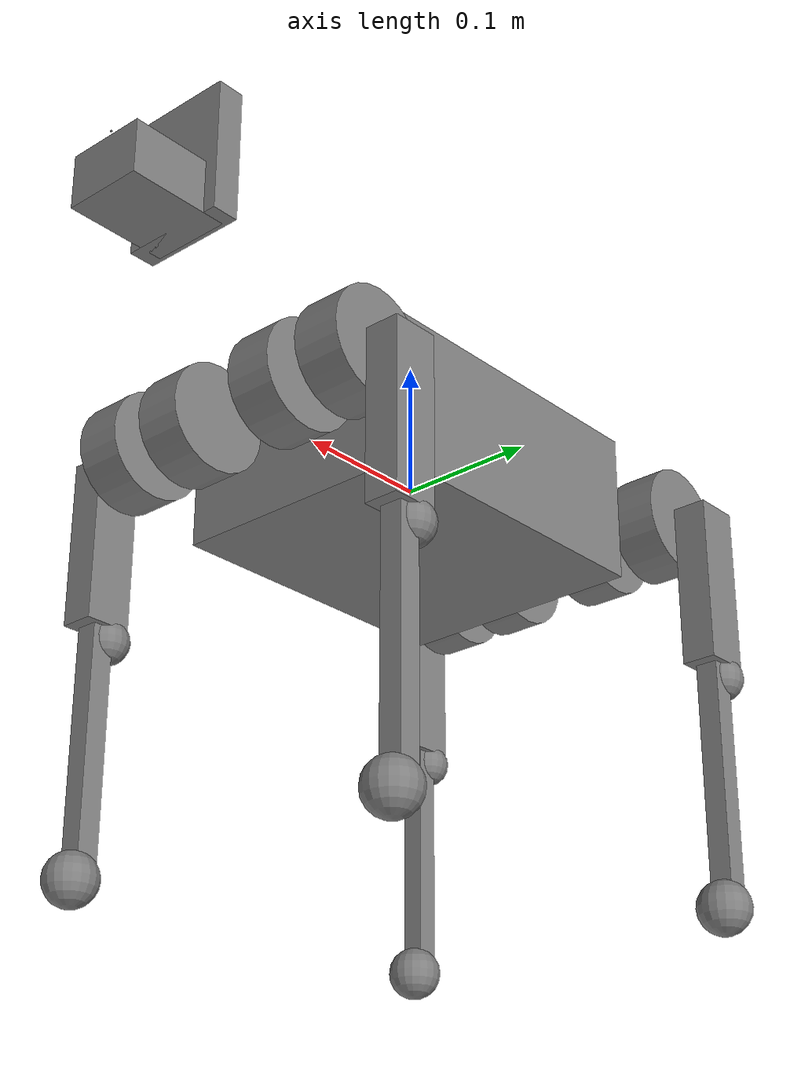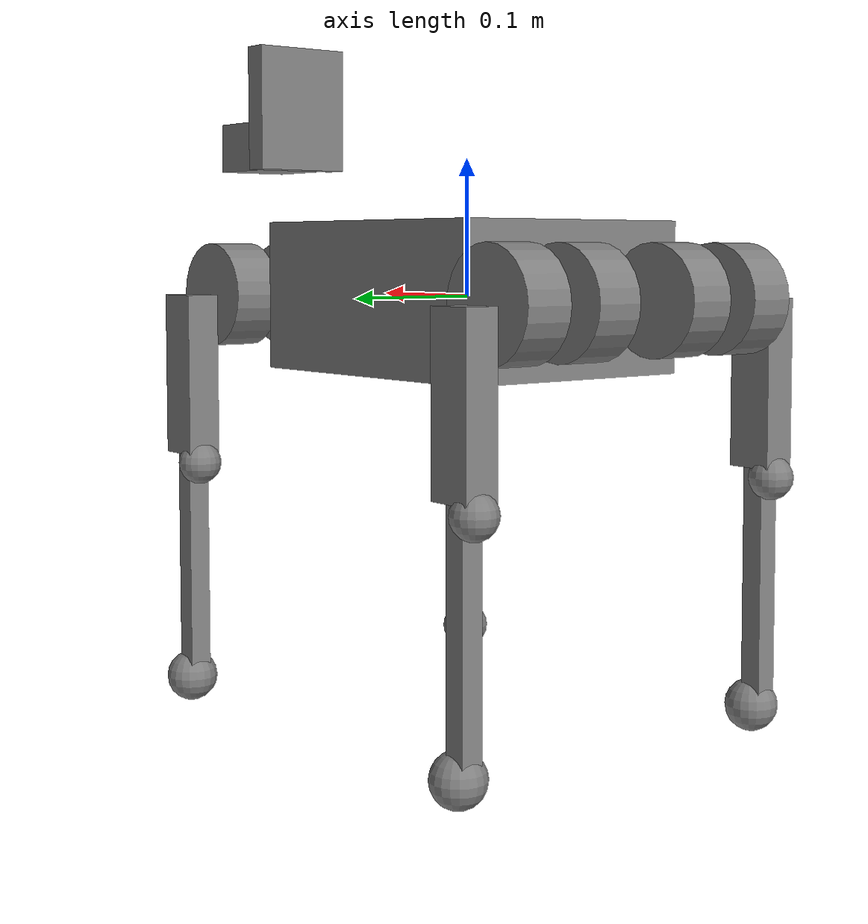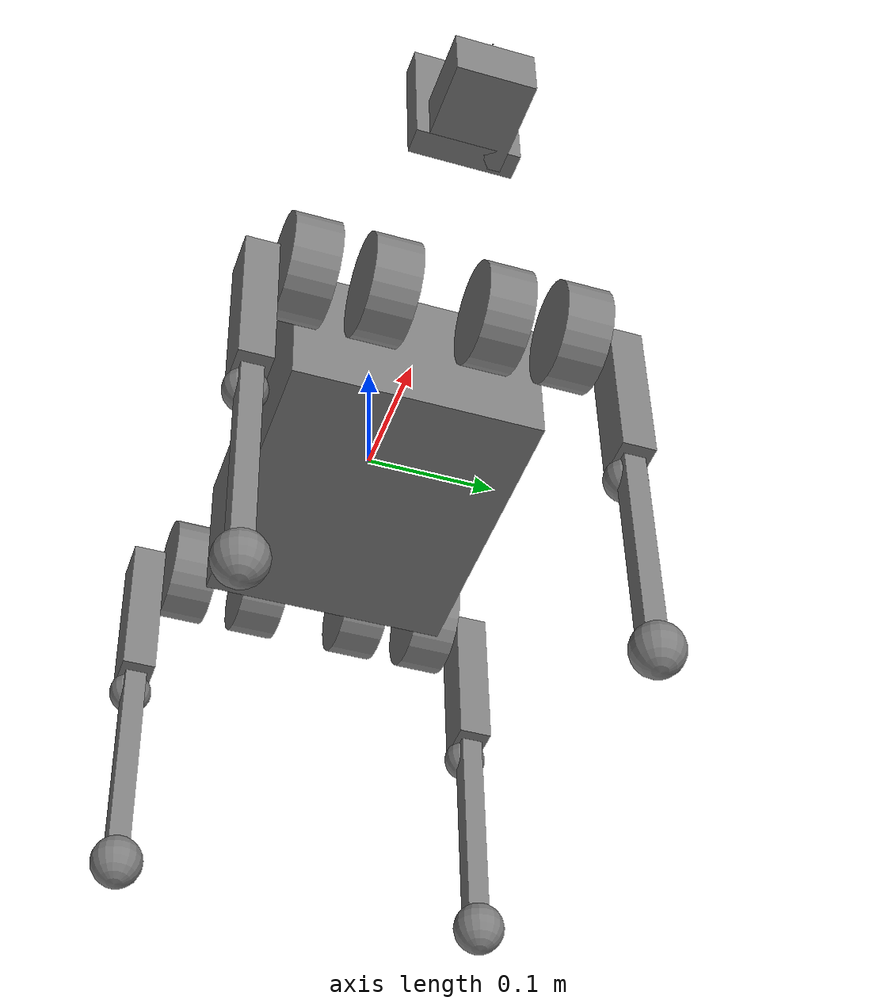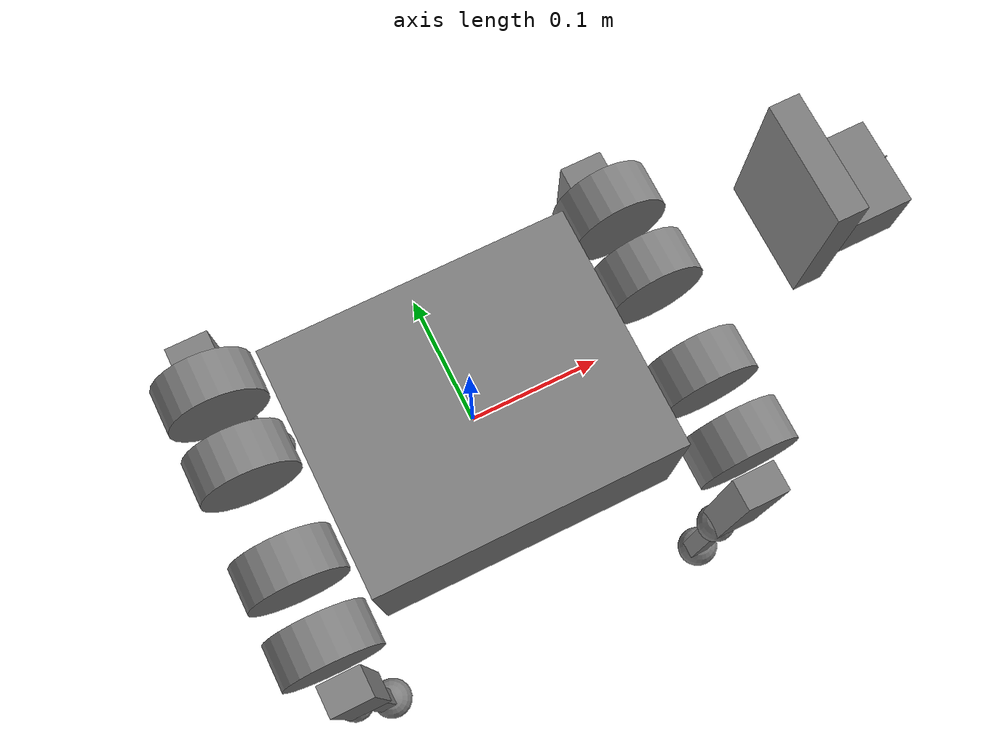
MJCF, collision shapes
<mujoco model="cyber_dog">
  <compiler angle="radian" meshdir="./assets/"/>

  <asset>
    <mesh name="body" file="body.obj"/>
    <mesh name="abad" file="abad.obj"/>
    <mesh name="hip_mirror" file="hip_mirror.obj"/>
    <mesh name="knee" file="knee.obj"/>
    <mesh name="hip" file="hip.obj"/>
  </asset>

  <worldbody>
    <geom type="mesh" contype="0" conaffinity="0" group="1" density="0" mesh="body"/>
    <geom size="0.118 0.095 0.0545" type="box"/>
    <geom size="0.0005 0.0005 0.0005" pos="0.0334 -0.0172765 0.0510469" type="box" contype="0" conaffinity="0" group="1" density="0"/>
    <geom size="0.0005 0.0005 0.0005" pos="0.0334 -0.0172765 0.0510469" type="box"/>
    <geom size="0.0005 0.0005 0.0005" pos="0.271994 0.025 0.114912" type="box" contype="0" conaffinity="0" group="1" density="0"/>
    <geom size="0.0005 0.0005 0.0005" pos="0.271994 0.025 0.114912" type="box"/>
    <geom size="0.0005 0.0005 0.0005" pos="0.27576 0 0.125794" type="box" contype="0" conaffinity="0" group="1" density="0"/>
    <geom size="0.0005 0.0005 0.0005" pos="0.27576 0 0.125794" type="box"/>
    <geom size="0.0005 0.0005 0.0005" pos="0.290228 0 0.14742" type="box" contype="0" conaffinity="0" group="1" density="0"/>
    <geom size="0.0005 0.0005 0.0005" pos="0.290228 0 0.14742" type="box"/>
    <geom size="0.038 0.03 0.02" pos="0.256 0 0.12" type="box"/>
    <geom size="0.01 0.04 0.05" pos="0.225 0 0.15" type="box"/>
    <body name="FR_hip" pos="0.164 -0.042 0">
      <inertial pos="-0.00240107 -0.0154892 -0.0172606" quat="0.854865 0.146448 -0.100284 0.487546" mass="0.577943" diaginertia="0.000939461 0.000861346 0.000459189"/>
      <joint name="FR_hip_joint" pos="0 0 0" axis="1 0 0" range="-0.680678 0.680678" actuatorfrcrange="-12.0001 12.0001" damping="0.01" frictionloss="0.1"/>
      <geom quat="0 1 0 0" type="mesh" contype="0" conaffinity="0" group="1" density="0" mesh="abad"/>
      <geom size="0.039 0.0175" quat="0.707107 0.707107 0 0" type="cylinder"/>
      <geom size="0.039 0.0175" pos="0 -0.059 0" quat="0.707107 0.707107 0 0" type="cylinder"/>
      <body name="FR_thigh" pos="0 -0.094 0">
        <inertial pos="-0.0121916 0.0171622 -0.0148955" quat="0.567878 -0.0836847 0.0734986 0.815542" mass="0.5954" diaginertia="0.0015013 0.00108567 0.000705755"/>
        <joint name="FR_thigh_joint" pos="0 0 0" axis="0 1 0" range="-1.32645 2.79253" actuatorfrcrange="-12.0001 12.0001" damping="0.01" frictionloss="0.1"/>
        <geom type="mesh" contype="0" conaffinity="0" group="1" density="0" mesh="hip_mirror"/>
        <geom size="0.06 0.0125 0.017" pos="0 0 -0.06" quat="0.707107 0 0.707107 0" type="box"/>
        <body name="FR_calf" pos="0 0 -0.12">
          <inertial pos="0.00157271 -3.78302e-05 -0.106096" quat="0.708712 -0.0140225 -0.0146892 0.705206" mass="0.144731" diaginertia="0.000843553 0.00083835 1.87502e-05"/>
          <joint name="FR_calf_joint" pos="0 0 0" axis="0 1 0" range="-2.53073 -0.523599" actuatorfrcrange="-12.0001 12.0001" damping="0.01" frictionloss="0.1"/>
          <geom type="mesh" contype="0" conaffinity="0" group="1" density="0" mesh="knee"/>
          <geom size="0.008 0.008 0.091705" pos="0 0 -0.091705" quat="0 0 1 0" type="box"/>
          <geom name="FR_calf_rubber" size="0.016" pos="-0.01 0 -0.007" quat="0 0 1 0"/>
          <geom size="0.009" pos="0.0055 0 -0.17391" contype="0" conaffinity="0" group="1" density="0"/>
          <geom size="0.019" pos="0.0055 0 -0.17391"/>
        </body>
      </body>
    </body>
    <body name="FL_hip" pos="0.164 0.042 0">
      <inertial pos="-0.00240107 0.00288635 0.0168857" quat="0.996321 0.0668053 0.0327752 -0.0425107" mass="0.577943" diaginertia="0.00102469 0.000873783 0.000644006"/>
      <joint name="FL_hip_joint" pos="0 0 0" axis="1 0 0" range="-0.680678 0.680678" actuatorfrcrange="-12.0001 12.0001" damping="0.01" frictionloss="0.1"/>
      <geom type="mesh" contype="0" conaffinity="0" group="1" density="0" mesh="abad"/>
      <geom size="0.039 0.0175" quat="0.707107 0.707107 0 0" type="cylinder"/>
      <geom size="0.039 0.0175" pos="0 0.059 0" quat="0.707107 0.707107 0 0" type="cylinder"/>
      <body name="FL_thigh" pos="0 0.094 0">
        <inertial pos="0.00875911 -0.0171622 -0.0148955" quat="0.572097 0.163453 0.00666604 0.803706" mass="0.5954" diaginertia="0.00153144 0.00112858 0.000718344"/>
        <joint name="FL_thigh_joint" pos="0 0 0" axis="0 1 0" range="-1.32645 2.79253" actuatorfrcrange="-12.0001 12.0001" damping="0.01" frictionloss="0.1"/>
        <geom type="mesh" contype="0" conaffinity="0" group="1" density="0" mesh="hip"/>
        <geom size="0.06 0.0125 0.017" pos="0 0 -0.06" quat="0.707107 0 0.707107 0" type="box"/>
        <body name="FL_calf" pos="0 0 -0.12">
          <inertial pos="0.00157271 -3.78302e-05 -0.106096" quat="0.708712 -0.0140225 -0.0146892 0.705206" mass="0.144731" diaginertia="0.000843553 0.00083835 1.87502e-05"/>
          <joint name="FL_calf_joint" pos="0 0 0" axis="0 1 0" range="-2.53073 -0.523599" actuatorfrcrange="-12.0001 12.0001" damping="0.01" frictionloss="0.1"/>
          <geom type="mesh" contype="0" conaffinity="0" group="1" density="0" mesh="knee"/>
          <geom size="0.008 0.008 0.091705" pos="0 0 -0.091705" quat="0 0 1 0" type="box"/>
          <geom name="FL_calf_rubber" size="0.016" pos="-0.01 0 -0.007" quat="0 0 1 0"/>
          <geom size="0.009" pos="0.0055 0 -0.17391" contype="0" conaffinity="0" group="1" density="0"/>
          <geom size="0.019" pos="0.0055 0 -0.17391"/>
        </body>
      </body>
    </body>
    <body name="RR_hip" pos="-0.164 -0.042 0">
      <inertial pos="0.00240107 -0.00288635 -0.0172606" quat="0.997161 0.0549798 0.0319079 -0.0403524" mass="0.577943" diaginertia="0.00101711 0.000864977 0.000645591"/>
      <joint name="RR_hip_joint" pos="0 0 0" axis="1 0 0" range="-0.680678 0.680678" actuatorfrcrange="-12.0001 12.0001" damping="0.01" frictionloss="0.1"/>
      <geom quat="0 0 0 -1" type="mesh" contype="0" conaffinity="0" group="1" density="0" mesh="abad"/>
      <geom size="0.039 0.0175" quat="0.707107 0.707107 0 0" type="cylinder"/>
      <geom size="0.039 0.0175" pos="0 -0.059 0" quat="0.707107 0.707107 0 0" type="cylinder"/>
      <body name="RR_thigh" pos="0 -0.094 0">
        <inertial pos="-0.0121916 0.0171622 -0.0148955" quat="0.567878 -0.0836847 0.0734986 0.815542" mass="0.5954" diaginertia="0.0015013 0.00108567 0.000705755"/>
        <joint name="RR_thigh_joint" pos="0 0 0" axis="0 1 0" range="-0.977384 3.14159" actuatorfrcrange="-12.0001 12.0001" damping="0.01" frictionloss="0.1"/>
        <geom type="mesh" contype="0" conaffinity="0" group="1" density="0" mesh="hip_mirror"/>
        <geom size="0.06 0.0125 0.017" pos="0 0 -0.06" quat="0.707107 0 0.707107 0" type="box"/>
        <body name="RR_calf" pos="0 0 -0.12">
          <inertial pos="0.00157271 -3.78302e-05 -0.106096" quat="0.708712 -0.0140225 -0.0146892 0.705206" mass="0.144731" diaginertia="0.000843553 0.00083835 1.87502e-05"/>
          <joint name="RR_calf_joint" pos="0 0 0" axis="0 1 0" range="-2.53073 -0.523599" actuatorfrcrange="-12.0001 12.0001" damping="0.01" frictionloss="0.1"/>
          <geom type="mesh" contype="0" conaffinity="0" group="1" density="0" mesh="knee"/>
          <geom size="0.008 0.008 0.091705" pos="0 0 -0.091705" quat="0 0 1 0" type="box"/>
          <geom name="RR_calf_rubber" size="0.016" pos="-0.01 0 -0.007" quat="0 0 1 0"/>
          <geom size="0.009" pos="0.0055 0 -0.17391" contype="0" conaffinity="0" group="1" density="0"/>
          <geom size="0.019" pos="0.0055 0 -0.17391"/>
        </body>
      </body>
    </body>
    <body name="RL_hip" pos="-0.164 0.042 0">
      <inertial pos="0.00240107 0.0154892 0.0168857" quat="0.85336 0.146114 -0.101597 0.490006" mass="0.577943" diaginertia="0.000948373 0.000868859 0.00045756"/>
      <joint name="RL_hip_joint" pos="0 0 0" axis="1 0 0" range="-0.680678 0.680678" actuatorfrcrange="-12.0001 12.0001" damping="0.01" frictionloss="0.1"/>
      <geom quat="0 0 1 0" type="mesh" contype="0" conaffinity="0" group="1" density="0" mesh="abad"/>
      <geom size="0.039 0.0175" quat="0.707107 0.707107 0 0" type="cylinder"/>
      <geom size="0.039 0.0175" pos="0 0.059 0" quat="0.707107 0.707107 0 0" type="cylinder"/>
      <body name="RL_thigh" pos="0 0.094 0">
        <inertial pos="0.00875911 -0.0171622 -0.0148955" quat="0.572097 0.163453 0.00666604 0.803706" mass="0.5954" diaginertia="0.00153144 0.00112858 0.000718344"/>
        <joint name="RL_thigh_joint" pos="0 0 0" axis="0 1 0" range="-0.977384 3.14159" actuatorfrcrange="-12.0001 12.0001" damping="0.01" frictionloss="0.1"/>
        <geom type="mesh" contype="0" conaffinity="0" group="1" density="0" mesh="hip"/>
        <geom size="0.06 0.0125 0.017" pos="0 0 -0.06" quat="0.707107 0 0.707107 0" type="box"/>
        <body name="RL_calf" pos="0 0 -0.12">
          <inertial pos="0.00157271 -3.78302e-05 -0.106096" quat="0.708712 -0.0140225 -0.0146892 0.705206" mass="0.144731" diaginertia="0.000843553 0.00083835 1.87502e-05"/>
          <joint name="RL_calf_joint" pos="0 0 0" axis="0 1 0" range="-2.53073 -0.523599" actuatorfrcrange="-12.0001 12.0001" damping="0.01" frictionloss="0.1"/>
          <geom type="mesh" contype="0" conaffinity="0" group="1" density="0" mesh="knee"/>
          <geom size="0.008 0.008 0.091705" pos="0 0 -0.091705" quat="0 0 1 0" type="box"/>
          <geom name="RL_calf_rubber" size="0.016" pos="-0.01 0 -0.007" quat="0 0 1 0"/>
          <geom size="0.009" pos="0.0055 0 -0.17391" contype="0" conaffinity="0" group="1" density="0"/>
          <geom size="0.019" pos="0.0055 0 -0.17391"/>
        </body>
      </body>
    </body>
  </worldbody>
</mujoco>
